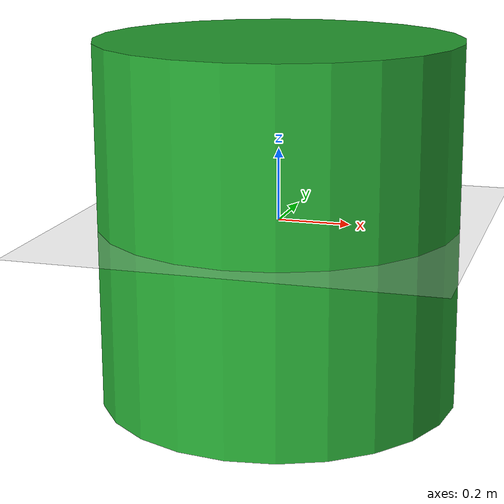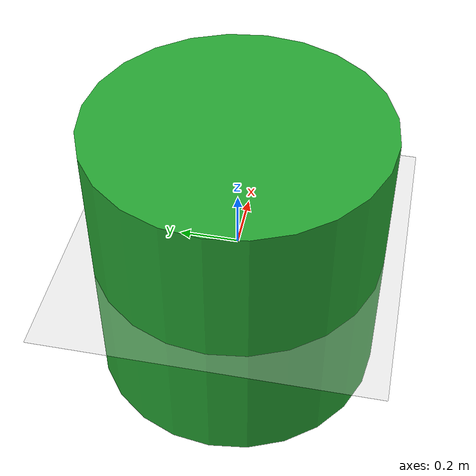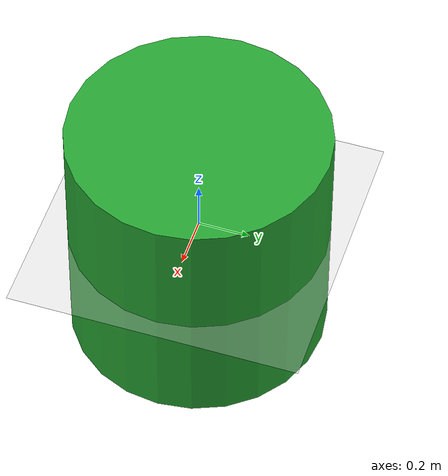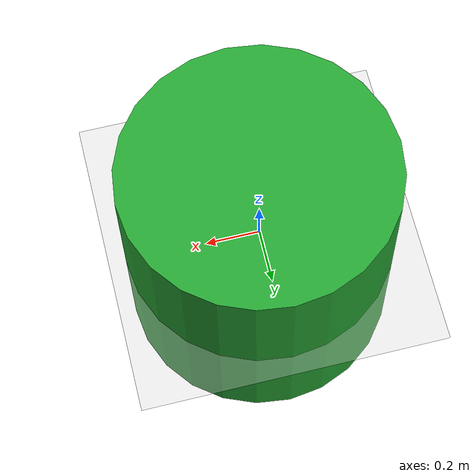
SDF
<sdf version="1.6">
 <world name="default">
  <include><uri>model://sun</uri></include>
  <include><uri>model://ground_plane</uri></include>
  <physics type="ode">
   <real_time_update_rate>1000.0</real_time_update_rate>
   <max_step_size>0.001</max_step_size>
   <real_time_factor>1</real_time_factor>
   <ode>
    <solver>
     <type>quick</type>
     <iters>150</iters>
     <precon_iters>0</precon_iters>
     <sor>1.400000</sor>
     <use_dynamic_moi_rescaling>1</use_dynamic_moi_rescaling>
    </solver>
    <constraints>
     <cfm>0.00001</cfm>
     <erp>0.2</erp>
     <contact_max_correcting_vel>2000.000000</contact_max_correcting_vel>
     <contact_surface_layer>0.01000</contact_surface_layer>
    </constraints>
   </ode>
  </physics>
  <model name="cylinder_1">
   <link name="link">
    <collision name="collision">
     <geometry><cylinder><radius>0.5</radius><length>1.0</length></cylinder></geometry>
    </collision>
    <visual name="cylinder_1">
     <geometry><cylinder><radius>0.5</radius><length>1.0</length></cylinder></geometry>
     <material>
      <script><uri>file://media/materials/scripts/gazebo.material</uri><name>Gazebo/Green</name></script>
     </material>
    </visual>
   </link>
   <plugin name="initial_random1" filename="libinitial_random.so">
    <origin>10.0 0.0 0.0</origin>
    <rx>11.0</rx>
    <ry>6.0</ry>
   </plugin>
  </model>
  <model name="cylinder_2">
   <link name="link">
    <collision name="collision">
     <geometry><cylinder><radius>0.5</radius><length>1.0</length></cylinder></geometry>
    </collision>
    <visual name="cylinder_2">
     <geometry><cylinder><radius>0.5</radius><length>1.0</length></cylinder></geometry>
     <material>
      <script><uri>file://media/materials/scripts/gazebo.material</uri><name>Gazebo/Green</name></script>
     </material>
    </visual>
   </link>
   <plugin name="initial_random2" filename="libinitial_random.so">
    <origin>10.0 0.0 0.0</origin>
    <rx>11.0</rx>
    <ry>6.0</ry>
   </plugin>
  </model>
  <model name="cylinder_3">
   <link name="link">
    <collision name="collision">
     <geometry><cylinder><radius>0.5</radius><length>1.0</length></cylinder></geometry>
    </collision>
    <visual name="cylinder_3">
     <geometry><cylinder><radius>0.5</radius><length>1.0</length></cylinder></geometry>
     <material>
      <script><uri>file://media/materials/scripts/gazebo.material</uri><name>Gazebo/Green</name></script>
     </material>
    </visual>
   </link>
   <plugin name="initial_random3" filename="libinitial_random.so">
    <origin>10.0 0.0 0.0</origin>
    <rx>11.0</rx>
    <ry>6.0</ry>
   </plugin>
  </model>
  <model name="box_1">
   <link name="link">
    <collision name="collision"><geometry><box><size>0.5 0.5 0.5</size></box></geometry></collision>
    <visual name="box_1">
     <geometry><box><size>0.5 0.5 0.5</size></box></geometry>
     <material>
      <script><uri>file://media/materials/scripts/gazebo.material</uri><name>Gazebo/Green</name></script>
     </material>
    </visual>
   </link>
   <plugin name="initial_random4" filename="libinitial_random.so">
    <origin>10.0 0.0 0.0</origin>
    <rx>11.0</rx>
    <ry>6.0</ry>
   </plugin>
  </model>
  <model name="box_2">
   <link name="link">
    <collision name="collision"><geometry><box><size>0.5 0.5 0.5</size></box></geometry></collision>
    <visual name="box_2">
     <geometry><box><size>0.5 0.5 0.5</size></box></geometry>
     <material>
      <script><uri>file://media/materials/scripts/gazebo.material</uri><name>Gazebo/Green</name></script>
     </material>
    </visual>
   </link>
   <plugin name="initial_random5" filename="libinitial_random.so">
    <origin>10.0 0.0 0.0</origin>
    <rx>11.0</rx>
    <ry>6.0</ry>
   </plugin>
  </model>
  <model name="box_3">
   <link name="link">
    <collision name="collision"><geometry><box><size>0.5 0.5 0.5</size></box></geometry></collision>
    <visual name="box_3">
     <geometry><box><size>0.5 0.5 0.5</size></box></geometry>
     <material>
      <script><uri>file://media/materials/scripts/gazebo.material</uri><name>Gazebo/Green</name></script>
     </material>
    </visual>
   </link>
   <plugin name="initial_random6" filename="libinitial_random.so">
    <origin>10.0 0.0 0.0</origin>
    <rx>11.0</rx>
    <ry>6.0</ry>
   </plugin>
  </model>
  <scene><ambient>0.4 0.4 0.4 1</ambient><background>0.7 0.7 0.7 1</background><shadows>false</shadows></scene>
 </world>
</sdf>
